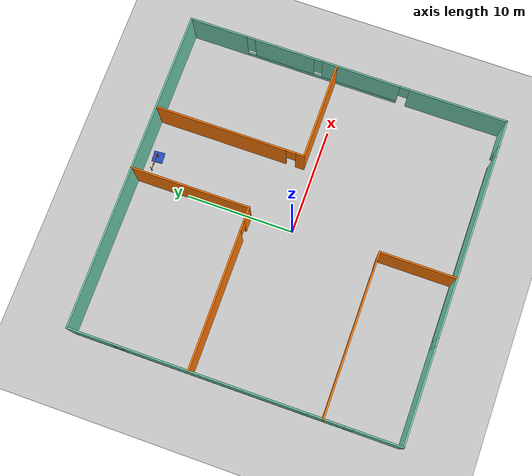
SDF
<sdf version="1.6">
 <world name="default">
  <model name="ground_plane">
   <static>1</static>
   <link name="link">
    <collision name="collision">
     <geometry><plane><normal>0 0 1</normal><size>100 100</size></plane></geometry>
     <surface>
      <contact><collide_bitmask>65535</collide_bitmask></contact>
      <friction><ode><mu>100</mu><mu2>50</mu2></ode></friction>
     </surface>
    </collision>
    <visual name="visual">
     <cast_shadows>0</cast_shadows>
     <geometry><plane><normal>0 0 1</normal><size>100 100</size></plane></geometry>
     <material>
      <script><uri>file://media/materials/scripts/gazebo.material</uri><name>Gazebo/Grey</name></script>
     </material>
    </visual>
   </link>
  </model>
  <model name="mybuilding">
   <link name="Wall_0">
    <pose>0 -15 0 0 -0 0</pose>
    <visual name="Wall_0_Visual_0">
     <pose>-10.633 0 2 0 -0 0</pose>
     <geometry><box><size>8.884 0.15 4</size></box></geometry>
     <material>
      <script><uri>file://media/materials/scripts/gazebo.material</uri><name>Gazebo/Grey</name></script>
      <ambient>0.435294 0.796078 0.67451 1</ambient>
     </material>
     <meta><layer>0</layer></meta>
    </visual>
    <collision name="Wall_0_Collision_0">
     <geometry><box><size>8.884 0.15 4</size></box></geometry>
     <pose>-10.633 0 2 0 -0 0</pose>
    </collision>
    <visual name="Wall_0_Visual_1">
     <pose>13.7885 0 2 0 -0 0</pose>
     <geometry><box><size>2.57292 0.15 4</size></box></geometry>
     <material>
      <script><uri>file://media/materials/scripts/gazebo.material</uri><name>Gazebo/Grey</name></script>
      <ambient>0.435294 0.796078 0.67451 1</ambient>
     </material>
     <meta><layer>0</layer></meta>
    </visual>
    <collision name="Wall_0_Collision_1">
     <geometry><box><size>2.57292 0.15 4</size></box></geometry>
     <pose>13.7885 0 2 0 -0 0</pose>
    </collision>
    <visual name="Wall_0_Visual_2">
     <pose>2.70554 0 0.25 0 -0 0</pose>
     <geometry><box><size>17.7931 0.15 0.5</size></box></geometry>
     <material>
      <script><uri>file://media/materials/scripts/gazebo.material</uri><name>Gazebo/Grey</name></script>
      <ambient>0.435294 0.796078 0.67451 1</ambient>
     </material>
     <meta><layer>0</layer></meta>
    </visual>
    <collision name="Wall_0_Collision_2">
     <geometry><box><size>17.7931 0.15 0.5</size></box></geometry>
     <pose>2.70554 0 0.25 0 -0 0</pose>
    </collision>
    <visual name="Wall_0_Visual_3">
     <pose>3.10554 0 2.25 0 -0 0</pose>
     <geometry><box><size>16.9931 0.15 3.5</size></box></geometry>
     <material>
      <script><uri>file://media/materials/scripts/gazebo.material</uri><name>Gazebo/Grey</name></script>
      <ambient>0.435294 0.796078 0.67451 1</ambient>
     </material>
     <meta><layer>0</layer></meta>
    </visual>
    <collision name="Wall_0_Collision_3">
     <geometry><box><size>16.9931 0.15 3.5</size></box></geometry>
     <pose>3.10554 0 2.25 0 -0 0</pose>
    </collision>
    <visual name="Wall_0_Visual_4">
     <pose>-5.791 0 2.65 0 -0 0</pose>
     <geometry><box><size>0.8 0.15 2.7</size></box></geometry>
     <material>
      <script><uri>file://media/materials/scripts/gazebo.material</uri><name>Gazebo/Grey</name></script>
      <ambient>0.435294 0.796078 0.67451 1</ambient>
     </material>
     <meta><layer>0</layer></meta>
    </visual>
    <collision name="Wall_0_Collision_4">
     <geometry><box><size>0.8 0.15 2.7</size></box></geometry>
     <pose>-5.791 0 2.65 0 -0 0</pose>
    </collision>
    <visual name="Wall_0_Visual_5">
     <pose>12.0521 0 3 0 -0 0</pose>
     <geometry><box><size>0.9 0.15 2</size></box></geometry>
     <material>
      <script><uri>file://media/materials/scripts/gazebo.material</uri><name>Gazebo/Grey</name></script>
      <ambient>0.435294 0.796078 0.67451 1</ambient>
     </material>
     <meta><layer>0</layer></meta>
    </visual>
    <collision name="Wall_0_Collision_5">
     <geometry><box><size>0.9 0.15 2</size></box></geometry>
     <pose>12.0521 0 3 0 -0 0</pose>
    </collision>
   </link>
   <link name="Wall_11">
    <pose>6 8 0 0 0 -1.5708</pose>
    <visual name="Wall_11_Visual_0">
     <pose>-0.873456 0 2 0 -0 0</pose>
     <geometry><box><size>12.4031 0.15 4</size></box></geometry>
     <material>
      <script><uri>file://media/materials/scripts/gazebo.material</uri><name>Gazebo/Grey</name></script>
      <ambient>0.996078 0.47451 0.0196078 1</ambient>
     </material>
     <meta><layer>0</layer></meta>
    </visual>
    <collision name="Wall_11_Collision_0">
     <geometry><box><size>12.4031 0.15 4</size></box></geometry>
     <pose>-0.873456 0 2 0 -0 0</pose>
    </collision>
    <visual name="Wall_11_Visual_1">
     <pose>6.65154 0 2 0 -0 0</pose>
     <geometry><box><size>0.846912 0.15 4</size></box></geometry>
     <material>
      <script><uri>file://media/materials/scripts/gazebo.material</uri><name>Gazebo/Grey</name></script>
      <ambient>0.996078 0.47451 0.0196078 1</ambient>
     </material>
     <meta><layer>0</layer></meta>
    </visual>
    <collision name="Wall_11_Collision_1">
     <geometry><box><size>0.846912 0.15 4</size></box></geometry>
     <pose>6.65154 0 2 0 -0 0</pose>
    </collision>
    <visual name="Wall_11_Visual_2">
     <pose>5.77809 0 3 0 -0 0</pose>
     <geometry><box><size>0.9 0.15 2</size></box></geometry>
     <material>
      <script><uri>file://media/materials/scripts/gazebo.material</uri><name>Gazebo/Grey</name></script>
      <ambient>0.996078 0.47451 0.0196078 1</ambient>
     </material>
     <meta><layer>0</layer></meta>
    </visual>
    <collision name="Wall_11_Collision_2">
     <geometry><box><size>0.9 0.15 2</size></box></geometry>
     <pose>5.77809 0 3 0 -0 0</pose>
    </collision>
   </link>
   <link name="Wall_12">
    <collision name="Wall_12_Collision">
     <geometry><box><size>9.15 0.15 4</size></box></geometry>
     <pose>0 0 2 0 -0 0</pose>
    </collision>
    <visual name="Wall_12_Visual">
     <pose>0 0 2 0 -0 0</pose>
     <geometry><box><size>9.15 0.15 4</size></box></geometry>
     <material>
      <script><uri>file://media/materials/scripts/gazebo.material</uri><name>Gazebo/Grey</name></script>
      <ambient>0.996078 0.47451 0.0196078 1</ambient>
     </material>
     <meta><layer>0</layer></meta>
    </visual>
    <pose>10.5 1 0 0 -0 0</pose>
   </link>
   <link name="Wall_15">
    <pose>-7.5 -8 0 0 -0 0</pose>
    <visual name="Wall_15_Visual_0">
     <pose>-0.899366 0 2 0 -0 0</pose>
     <geometry><box><size>13.3513 0.15 4</size></box></geometry>
     <material>
      <script><uri>file://media/materials/scripts/gazebo.material</uri><name>Gazebo/Grey</name></script>
      <ambient>0.996078 0.47451 0.0196078 1</ambient>
     </material>
     <meta><layer>0</layer></meta>
    </visual>
    <collision name="Wall_15_Collision_0">
     <geometry><box><size>13.3513 0.15 4</size></box></geometry>
     <pose>-0.899366 0 2 0 -0 0</pose>
    </collision>
    <visual name="Wall_15_Visual_1">
     <pose>7.12563 0 2 0 -0 0</pose>
     <geometry><box><size>0.898731 0.15 4</size></box></geometry>
     <material>
      <script><uri>file://media/materials/scripts/gazebo.material</uri><name>Gazebo/Grey</name></script>
      <ambient>0.996078 0.47451 0.0196078 1</ambient>
     </material>
     <meta><layer>0</layer></meta>
    </visual>
    <collision name="Wall_15_Collision_1">
     <geometry><box><size>0.898731 0.15 4</size></box></geometry>
     <pose>7.12563 0 2 0 -0 0</pose>
    </collision>
    <visual name="Wall_15_Visual_2">
     <pose>6.22627 0 3 0 -0 0</pose>
     <geometry><box><size>0.9 0.15 2</size></box></geometry>
     <material>
      <script><uri>file://media/materials/scripts/gazebo.material</uri><name>Gazebo/Grey</name></script>
      <ambient>0.996078 0.47451 0.0196078 1</ambient>
     </material>
     <meta><layer>0</layer></meta>
    </visual>
    <collision name="Wall_15_Collision_2">
     <geometry><box><size>0.9 0.15 2</size></box></geometry>
     <pose>6.22627 0 3 0 -0 0</pose>
    </collision>
   </link>
   <link name="Wall_16">
    <collision name="Wall_16_Collision">
     <geometry><box><size>7.15 0.15 4</size></box></geometry>
     <pose>0 0 2 0 -0 0</pose>
    </collision>
    <visual name="Wall_16_Visual">
     <pose>0 0 2 0 -0 0</pose>
     <geometry><box><size>7.15 0.15 4</size></box></geometry>
     <material>
      <script><uri>file://media/materials/scripts/gazebo.material</uri><name>Gazebo/Grey</name></script>
      <ambient>0.996078 0.47451 0.0196078 1</ambient>
     </material>
     <meta><layer>0</layer></meta>
    </visual>
    <pose>0 -11.5 0 0 0 -1.5708</pose>
   </link>
   <link name="Wall_2">
    <pose>-15 0 0 0 -0 1.5708</pose>
    <visual name="Wall_2_Visual_0">
     <pose>-12.8592 0 2 0 -0 0</pose>
     <geometry><box><size>4.43152 0.15 4</size></box></geometry>
     <material>
      <script><uri>file://media/materials/scripts/gazebo.material</uri><name>Gazebo/Grey</name></script>
      <ambient>0.435294 0.796078 0.67451 1</ambient>
     </material>
     <meta><layer>0</layer></meta>
    </visual>
    <collision name="Wall_2_Collision_0">
     <geometry><box><size>4.43152 0.15 4</size></box></geometry>
     <pose>-12.8592 0 2 0 -0 0</pose>
    </collision>
    <visual name="Wall_2_Visual_1">
     <pose>2.21576 0 0.25 0 -0 0</pose>
     <geometry><box><size>25.7185 0.15 0.5</size></box></geometry>
     <material>
      <script><uri>file://media/materials/scripts/gazebo.material</uri><name>Gazebo/Grey</name></script>
      <ambient>0.435294 0.796078 0.67451 1</ambient>
     </material>
     <meta><layer>0</layer></meta>
    </visual>
    <collision name="Wall_2_Collision_1">
     <geometry><box><size>25.7185 0.15 0.5</size></box></geometry>
     <pose>2.21576 0 0.25 0 -0 0</pose>
    </collision>
    <visual name="Wall_2_Visual_2">
     <pose>-8.20692 0 2.25 0 -0 0</pose>
     <geometry><box><size>3.27311 0.15 3.5</size></box></geometry>
     <material>
      <script><uri>file://media/materials/scripts/gazebo.material</uri><name>Gazebo/Grey</name></script>
      <ambient>0.435294 0.796078 0.67451 1</ambient>
     </material>
     <meta><layer>0</layer></meta>
    </visual>
    <collision name="Wall_2_Collision_2">
     <geometry><box><size>3.27311 0.15 3.5</size></box></geometry>
     <pose>-8.20692 0 2.25 0 -0 0</pose>
    </collision>
    <visual name="Wall_2_Visual_3">
     <pose>2.1359 0 2.25 0 -0 0</pose>
     <geometry><box><size>15.8125 0.15 3.5</size></box></geometry>
     <material>
      <script><uri>file://media/materials/scripts/gazebo.material</uri><name>Gazebo/Grey</name></script>
      <ambient>0.435294 0.796078 0.67451 1</ambient>
     </material>
     <meta><layer>0</layer></meta>
    </visual>
    <collision name="Wall_2_Collision_3">
     <geometry><box><size>15.8125 0.15 3.5</size></box></geometry>
     <pose>2.1359 0 2.25 0 -0 0</pose>
    </collision>
    <visual name="Wall_2_Visual_4">
     <pose>12.9586 0 2.25 0 -0 0</pose>
     <geometry><box><size>4.23284 0.15 3.5</size></box></geometry>
     <material>
      <script><uri>file://media/materials/scripts/gazebo.material</uri><name>Gazebo/Grey</name></script>
      <ambient>0.435294 0.796078 0.67451 1</ambient>
     </material>
     <meta><layer>0</layer></meta>
    </visual>
    <collision name="Wall_2_Collision_4">
     <geometry><box><size>4.23284 0.15 3.5</size></box></geometry>
     <pose>12.9586 0 2.25 0 -0 0</pose>
    </collision>
    <visual name="Wall_2_Visual_5">
     <pose>-10.2435 0 2.65 0 -0 0</pose>
     <geometry><box><size>0.8 0.15 2.7</size></box></geometry>
     <material>
      <script><uri>file://media/materials/scripts/gazebo.material</uri><name>Gazebo/Grey</name></script>
      <ambient>0.435294 0.796078 0.67451 1</ambient>
     </material>
     <meta><layer>0</layer></meta>
    </visual>
    <collision name="Wall_2_Collision_5">
     <geometry><box><size>0.8 0.15 2.7</size></box></geometry>
     <pose>-10.2435 0 2.65 0 -0 0</pose>
    </collision>
    <visual name="Wall_2_Visual_6">
     <pose>-6.17037 0 2.65 0 -0 0</pose>
     <geometry><box><size>0.8 0.15 2.7</size></box></geometry>
     <material>
      <script><uri>file://media/materials/scripts/gazebo.material</uri><name>Gazebo/Grey</name></script>
      <ambient>0.435294 0.796078 0.67451 1</ambient>
     </material>
     <meta><layer>0</layer></meta>
    </visual>
    <collision name="Wall_2_Collision_6">
     <geometry><box><size>0.8 0.15 2.7</size></box></geometry>
     <pose>-6.17037 0 2.65 0 -0 0</pose>
    </collision>
    <visual name="Wall_2_Visual_7">
     <pose>10.4422 0 2.65 0 -0 0</pose>
     <geometry><box><size>0.8 0.15 2.7</size></box></geometry>
     <material>
      <script><uri>file://media/materials/scripts/gazebo.material</uri><name>Gazebo/Grey</name></script>
      <ambient>0.435294 0.796078 0.67451 1</ambient>
     </material>
     <meta><layer>0</layer></meta>
    </visual>
    <collision name="Wall_2_Collision_7">
     <geometry><box><size>0.8 0.15 2.7</size></box></geometry>
     <pose>10.4422 0 2.65 0 -0 0</pose>
    </collision>
   </link>
   <link name="Wall_4">
    <collision name="Wall_4_Collision">
     <geometry><box><size>30.15 0.15 4</size></box></geometry>
     <pose>0 0 2 0 -0 0</pose>
    </collision>
    <visual name="Wall_4_Visual">
     <pose>0 0 2 0 -0 0</pose>
     <geometry><box><size>30.15 0.15 4</size></box></geometry>
     <material>
      <script><uri>file://media/materials/scripts/gazebo.material</uri><name>Gazebo/Grey</name></script>
      <ambient>0.435294 0.796078 0.67451 1</ambient>
     </material>
     <meta><layer>0</layer></meta>
    </visual>
    <pose>0 15 0 0 -0 0</pose>
   </link>
   <link name="Wall_6">
    <pose>15 0 0 0 0 -1.5708</pose>
    <visual name="Wall_6_Visual_0">
     <pose>-12.3389 0 2 0 -0 0</pose>
     <geometry><box><size>5.47227 0.15 4</size></box></geometry>
     <material>
      <script><uri>file://media/materials/scripts/gazebo.material</uri><name>Gazebo/Grey</name></script>
      <ambient>0.435294 0.796078 0.67451 1</ambient>
     </material>
     <meta><layer>0</layer></meta>
    </visual>
    <collision name="Wall_6_Collision_0">
     <geometry><box><size>5.47227 0.15 4</size></box></geometry>
     <pose>-12.3389 0 2 0 -0 0</pose>
    </collision>
    <visual name="Wall_6_Visual_1">
     <pose>10.4919 0 2 0 -0 0</pose>
     <geometry><box><size>9.16611 0.15 4</size></box></geometry>
     <material>
      <script><uri>file://media/materials/scripts/gazebo.material</uri><name>Gazebo/Grey</name></script>
      <ambient>0.435294 0.796078 0.67451 1</ambient>
     </material>
     <meta><layer>0</layer></meta>
    </visual>
    <collision name="Wall_6_Collision_1">
     <geometry><box><size>9.16611 0.15 4</size></box></geometry>
     <pose>10.4919 0 2 0 -0 0</pose>
    </collision>
    <visual name="Wall_6_Visual_2">
     <pose>-2.29692 0 0.25 0 -0 0</pose>
     <geometry><box><size>14.6116 0.15 0.5</size></box></geometry>
     <material>
      <script><uri>file://media/materials/scripts/gazebo.material</uri><name>Gazebo/Grey</name></script>
      <ambient>0.435294 0.796078 0.67451 1</ambient>
     </material>
     <meta><layer>0</layer></meta>
    </visual>
    <collision name="Wall_6_Collision_2">
     <geometry><box><size>14.6116 0.15 0.5</size></box></geometry>
     <pose>-2.29692 0 0.25 0 -0 0</pose>
    </collision>
    <visual name="Wall_6_Visual_3">
     <pose>-5.96326 0 2.25 0 -0 0</pose>
     <geometry><box><size>5.67893 0.15 3.5</size></box></geometry>
     <material>
      <script><uri>file://media/materials/scripts/gazebo.material</uri><name>Gazebo/Grey</name></script>
      <ambient>0.435294 0.796078 0.67451 1</ambient>
     </material>
     <meta><layer>0</layer></meta>
    </visual>
    <collision name="Wall_6_Collision_3">
     <geometry><box><size>5.67893 0.15 3.5</size></box></geometry>
     <pose>-5.96326 0 2.25 0 -0 0</pose>
    </collision>
    <visual name="Wall_6_Visual_4">
     <pose>1.34255 0 2.25 0 -0 0</pose>
     <geometry><box><size>7.3327 0.15 3.5</size></box></geometry>
     <material>
      <script><uri>file://media/materials/scripts/gazebo.material</uri><name>Gazebo/Grey</name></script>
      <ambient>0.435294 0.796078 0.67451 1</ambient>
     </material>
     <meta><layer>0</layer></meta>
    </visual>
    <collision name="Wall_6_Collision_4">
     <geometry><box><size>7.3327 0.15 3.5</size></box></geometry>
     <pose>1.34255 0 2.25 0 -0 0</pose>
    </collision>
    <visual name="Wall_6_Visual_5">
     <pose>-9.20273 0 2.65 0 -0 0</pose>
     <geometry><box><size>0.8 0.15 2.7</size></box></geometry>
     <material>
      <script><uri>file://media/materials/scripts/gazebo.material</uri><name>Gazebo/Grey</name></script>
      <ambient>0.435294 0.796078 0.67451 1</ambient>
     </material>
     <meta><layer>0</layer></meta>
    </visual>
    <collision name="Wall_6_Collision_5">
     <geometry><box><size>0.8 0.15 2.7</size></box></geometry>
     <pose>-9.20273 0 2.65 0 -0 0</pose>
    </collision>
    <visual name="Wall_6_Visual_6">
     <pose>-2.7238 0 2.65 0 -0 0</pose>
     <geometry><box><size>0.8 0.15 2.7</size></box></geometry>
     <material>
      <script><uri>file://media/materials/scripts/gazebo.material</uri><name>Gazebo/Grey</name></script>
      <ambient>0.435294 0.796078 0.67451 1</ambient>
     </material>
     <meta><layer>0</layer></meta>
    </visual>
    <collision name="Wall_6_Collision_6">
     <geometry><box><size>0.8 0.15 2.7</size></box></geometry>
     <pose>-2.7238 0 2.65 0 -0 0</pose>
    </collision>
    <visual name="Wall_6_Visual_7">
     <pose>5.45889 0 3 0 -0 0</pose>
     <geometry><box><size>0.9 0.15 2</size></box></geometry>
     <material>
      <script><uri>file://media/materials/scripts/gazebo.material</uri><name>Gazebo/Grey</name></script>
      <ambient>0.435294 0.796078 0.67451 1</ambient>
     </material>
     <meta><layer>0</layer></meta>
    </visual>
    <collision name="Wall_6_Collision_7">
     <geometry><box><size>0.9 0.15 2</size></box></geometry>
     <pose>5.45889 0 3 0 -0 0</pose>
    </collision>
   </link>
   <link name="Wall_8">
    <pose>-7.5 4 0 0 -0 0</pose>
    <visual name="Wall_8_Visual_0">
     <pose>-1.15244 0 2 0 -0 0</pose>
     <geometry><box><size>12.8451 0.15 4</size></box></geometry>
     <material>
      <script><uri>file://media/materials/scripts/gazebo.material</uri><name>Gazebo/Grey</name></script>
      <ambient>0.996078 0.47451 0.0196078 1</ambient>
     </material>
     <meta><layer>0</layer></meta>
    </visual>
    <collision name="Wall_8_Collision_0">
     <geometry><box><size>12.8451 0.15 4</size></box></geometry>
     <pose>-1.15244 0 2 0 -0 0</pose>
    </collision>
    <visual name="Wall_8_Visual_1">
     <pose>6.87256 0 2 0 -0 0</pose>
     <geometry><box><size>1.40488 0.15 4</size></box></geometry>
     <material>
      <script><uri>file://media/materials/scripts/gazebo.material</uri><name>Gazebo/Grey</name></script>
      <ambient>0.996078 0.47451 0.0196078 1</ambient>
     </material>
     <meta><layer>0</layer></meta>
    </visual>
    <collision name="Wall_8_Collision_1">
     <geometry><box><size>1.40488 0.15 4</size></box></geometry>
     <pose>6.87256 0 2 0 -0 0</pose>
    </collision>
    <visual name="Wall_8_Visual_2">
     <pose>5.72012 0 3 0 -0 0</pose>
     <geometry><box><size>0.9 0.15 2</size></box></geometry>
     <material>
      <script><uri>file://media/materials/scripts/gazebo.material</uri><name>Gazebo/Grey</name></script>
      <ambient>0.996078 0.47451 0.0196078 1</ambient>
     </material>
     <meta><layer>0</layer></meta>
    </visual>
    <collision name="Wall_8_Collision_2">
     <geometry><box><size>0.9 0.15 2</size></box></geometry>
     <pose>5.72012 0 3 0 -0 0</pose>
    </collision>
   </link>
   <link name="Wall_9">
    <collision name="Wall_9_Collision">
     <geometry><box><size>11.15 0.15 4</size></box></geometry>
     <pose>0 0 2 0 -0 0</pose>
    </collision>
    <visual name="Wall_9_Visual">
     <pose>0 0 2 0 -0 0</pose>
     <geometry><box><size>11.15 0.15 4</size></box></geometry>
     <material>
      <script><uri>file://media/materials/scripts/gazebo.material</uri><name>Gazebo/Grey</name></script>
      <ambient>0.996078 0.47451 0.0196078 1</ambient>
     </material>
     <meta><layer>0</layer></meta>
    </visual>
    <pose>0 9.5 0 0 -0 1.5708</pose>
   </link>
   <static>1</static>
  </model>
  <model name="simple_arm">
   <link name="arm_base">
    <inertial>
     <pose>0 0 0.00099 0 -0 0</pose>
     <inertia><ixx>1.11</ixx><ixy>0</ixy><ixz>0</ixz><iyy>100.11</iyy><iyz>0</iyz><izz>1.01</izz></inertia>
     <mass>101</mass>
    </inertial>
    <collision name="arm_base_geom">
     <pose>0 0 0.05 0 -0 0</pose>
     <geometry><box><size>1 1 0.1</size></box></geometry>
    </collision>
    <visual name="arm_base_geom_visual">
     <pose>0 0 0.05 0 -0 0</pose>
     <geometry><box><size>1 1 0.1</size></box></geometry>
     <material>
      <script><uri>file://media/materials/scripts/gazebo.material</uri><name>Gazebo/Blue</name></script>
     </material>
    </visual>
    <collision name="arm_base_geom_arm_trunk">
     <pose>0 0 0.6 0 -0 0</pose>
     <geometry><cylinder><radius>0.05</radius><length>1</length></cylinder></geometry>
    </collision>
    <visual name="arm_base_geom_arm_trunk_visual">
     <pose>0 0 0.6 0 -0 0</pose>
     <geometry><cylinder><radius>0.05</radius><length>1</length></cylinder></geometry>
     <material>
      <script><uri>file://media/materials/scripts/gazebo.material</uri><name>Gazebo/Red</name></script>
     </material>
    </visual>
   </link>
   <link name="arm_shoulder_pan">
    <pose>0 0 1.1 0 -0 0</pose>
    <inertial>
     <pose>0.045455 0 0 0 -0 0</pose>
     <inertia><ixx>0.011</ixx><ixy>0</ixy><ixz>0</ixz><iyy>0.0225</iyy><iyz>0</iyz><izz>0.0135</izz></inertia>
     <mass>1.1</mass>
    </inertial>
    <collision name="arm_shoulder_pan_geom">
     <pose>0 0 0.05 0 -0 0</pose>
     <geometry><cylinder><radius>0.05</radius><length>0.1</length></cylinder></geometry>
    </collision>
    <visual name="arm_shoulder_pan_geom_visual">
     <pose>0 0 0.05 0 -0 0</pose>
     <geometry><cylinder><radius>0.05</radius><length>0.1</length></cylinder></geometry>
     <material>
      <script><uri>file://media/materials/scripts/gazebo.material</uri><name>Gazebo/Yellow</name></script>
     </material>
    </visual>
    <collision name="arm_shoulder_pan_geom_arm_shoulder">
     <pose>0.55 0 0.05 0 -0 0</pose>
     <geometry><box><size>1 0.05 0.1</size></box></geometry>
    </collision>
    <visual name="arm_shoulder_pan_geom_arm_shoulder_visual">
     <pose>0.55 0 0.05 0 -0 0</pose>
     <geometry><box><size>1 0.05 0.1</size></box></geometry>
     <material>
      <script><uri>file://media/materials/scripts/gazebo.material</uri><name>Gazebo/Yellow</name></script>
     </material>
    </visual>
   </link>
   <link name="arm_elbow_pan">
    <pose>1.05 0 1.1 0 -0 0</pose>
    <inertial>
     <pose>0.0875 0 0.083333 0 -0 0</pose>
     <inertia>
      <ixx>0.031</ixx>
      <ixy>0</ixy>
      <ixz>0.005</ixz>
      <iyy>0.07275</iyy>
      <iyz>0</iyz>
      <izz>0.04475</izz>
     </inertia>
     <mass>1.2</mass>
    </inertial>
    <collision name="arm_elbow_pan_geom">
     <pose>0 0 0.1 0 -0 0</pose>
     <geometry><cylinder><radius>0.05</radius><length>0.2</length></cylinder></geometry>
    </collision>
    <visual name="arm_elbow_pan_geom_visual">
     <pose>0 0 0.1 0 -0 0</pose>
     <geometry><cylinder><radius>0.05</radius><length>0.2</length></cylinder></geometry>
     <material>
      <script><uri>file://media/materials/scripts/gazebo.material</uri><name>Gazebo/Red</name></script>
     </material>
    </visual>
    <collision name="arm_elbow_pan_geom_arm_elbow">
     <pose>0.3 0 0.15 0 -0 0</pose>
     <geometry><box><size>0.5 0.03 0.1</size></box></geometry>
    </collision>
    <visual name="arm_elbow_pan_geom_arm_elbow_visual">
     <pose>0.3 0 0.15 0 -0 0</pose>
     <geometry><box><size>0.5 0.03 0.1</size></box></geometry>
     <material>
      <script><uri>file://media/materials/scripts/gazebo.material</uri><name>Gazebo/Yellow</name></script>
     </material>
    </visual>
    <collision name="arm_elbow_pan_geom_arm_wrist">
     <pose>0.55 0 0.15 0 -0 0</pose>
     <geometry><cylinder><radius>0.05</radius><length>0.3</length></cylinder></geometry>
    </collision>
    <visual name="arm_elbow_pan_geom_arm_wrist_visual">
     <pose>0.55 0 0.15 0 -0 0</pose>
     <geometry><cylinder><radius>0.05</radius><length>0.3</length></cylinder></geometry>
     <material>
      <script><uri>file://media/materials/scripts/gazebo.material</uri><name>Gazebo/Red</name></script>
     </material>
    </visual>
   </link>
   <link name="arm_wrist_lift">
    <pose>1.6 0 1.05 0 -0 0</pose>
    <inertial>
     <inertia><ixx>0.01</ixx><ixy>0</ixy><ixz>0</ixz><iyy>0.01</iyy><iyz>0</iyz><izz>0.001</izz></inertia>
     <mass>0.1</mass>
    </inertial>
    <collision name="arm_wrist_lift_geom">
     <pose>0 0 0.5 0 -0 0</pose>
     <geometry><cylinder><radius>0.03</radius><length>1</length></cylinder></geometry>
    </collision>
    <visual name="arm_wrist_lift_geom_visual">
     <pose>0 0 0.5 0 -0 0</pose>
     <geometry><cylinder><radius>0.03</radius><length>1</length></cylinder></geometry>
     <material>
      <script><uri>file://media/materials/scripts/gazebo.material</uri><name>Gazebo/Yellow</name></script>
     </material>
    </visual>
   </link>
   <link name="arm_wrist_roll">
    <pose>1.6 0 1 0 -0 0</pose>
    <inertial>
     <inertia><ixx>0.01</ixx><ixy>0</ixy><ixz>0</ixz><iyy>0.01</iyy><iyz>0</iyz><izz>0.001</izz></inertia>
     <mass>0.1</mass>
    </inertial>
    <collision name="arm_wrist_roll_geom">
     <pose>0 0 0.025 0 -0 0</pose>
     <geometry><cylinder><radius>0.05</radius><length>0.05</length></cylinder></geometry>
    </collision>
    <visual name="arm_wrist_roll_geom_visual">
     <pose>0 0 0.025 0 -0 0</pose>
     <geometry><cylinder><radius>0.05</radius><length>0.05</length></cylinder></geometry>
     <material>
      <script><uri>file://media/materials/scripts/gazebo.material</uri><name>Gazebo/Red</name></script>
     </material>
    </visual>
   </link>
   <joint name="arm_shoulder_pan_joint" type="revolute">
    <parent>arm_base</parent>
    <child>arm_shoulder_pan</child>
    <axis>
     <dynamics>
      <damping>1</damping>
      <friction>0</friction>
      <spring_reference>0</spring_reference>
      <spring_stiffness>0</spring_stiffness>
     </dynamics>
     <xyz>0 0 1</xyz>
     <use_parent_model_frame>1</use_parent_model_frame>
     <limit><lower>-1e+16</lower><upper>1e+16</upper></limit>
    </axis>
   </joint>
   <joint name="arm_elbow_pan_joint" type="revolute">
    <parent>arm_shoulder_pan</parent>
    <child>arm_elbow_pan</child>
    <axis>
     <dynamics>
      <damping>1</damping>
      <friction>0</friction>
      <spring_reference>0</spring_reference>
      <spring_stiffness>0</spring_stiffness>
     </dynamics>
     <xyz>0 0 1</xyz>
     <use_parent_model_frame>1</use_parent_model_frame>
     <limit><lower>-1e+16</lower><upper>1e+16</upper></limit>
    </axis>
   </joint>
   <joint name="arm_wrist_lift_joint" type="prismatic">
    <parent>arm_elbow_pan</parent>
    <child>arm_wrist_lift</child>
    <axis>
     <dynamics>
      <damping>1</damping>
      <friction>0</friction>
      <spring_reference>0</spring_reference>
      <spring_stiffness>0</spring_stiffness>
     </dynamics>
     <limit><lower>-0.8</lower><upper>0.1</upper></limit>
     <xyz>0 0 1</xyz>
     <use_parent_model_frame>1</use_parent_model_frame>
    </axis>
   </joint>
   <joint name="arm_wrist_roll_joint" type="revolute">
    <parent>arm_wrist_lift</parent>
    <child>arm_wrist_roll</child>
    <axis>
     <dynamics>
      <damping>1</damping>
      <friction>0</friction>
      <spring_reference>0</spring_reference>
      <spring_stiffness>0</spring_stiffness>
     </dynamics>
     <limit><lower>-2.99999</lower><upper>2.99999</upper></limit>
     <xyz>0 0 1</xyz>
     <use_parent_model_frame>1</use_parent_model_frame>
    </axis>
   </joint>
   <pose>2.6181 14.0175 0 0 0 -3.061</pose>
  </model>
 </world>
</sdf>
